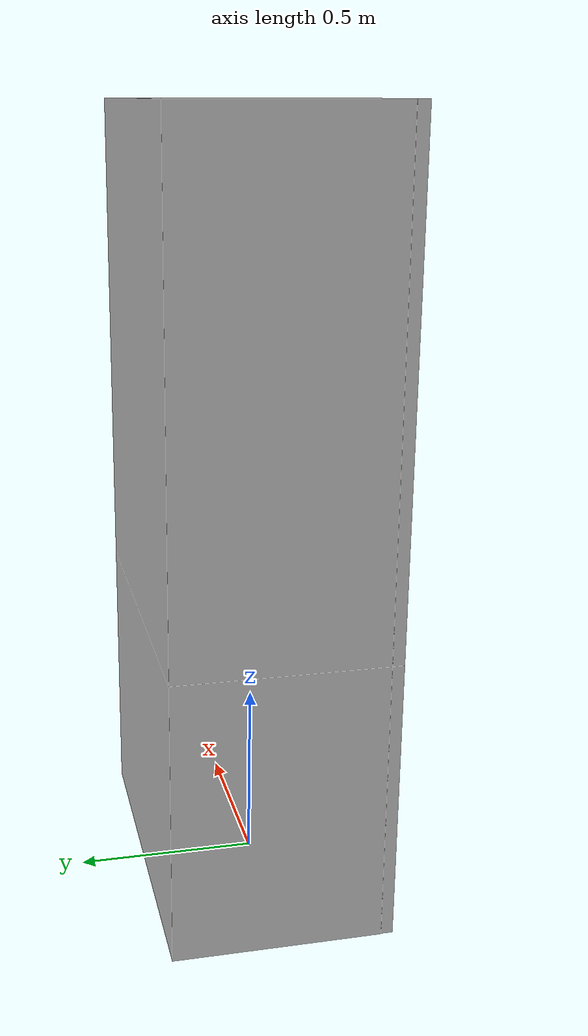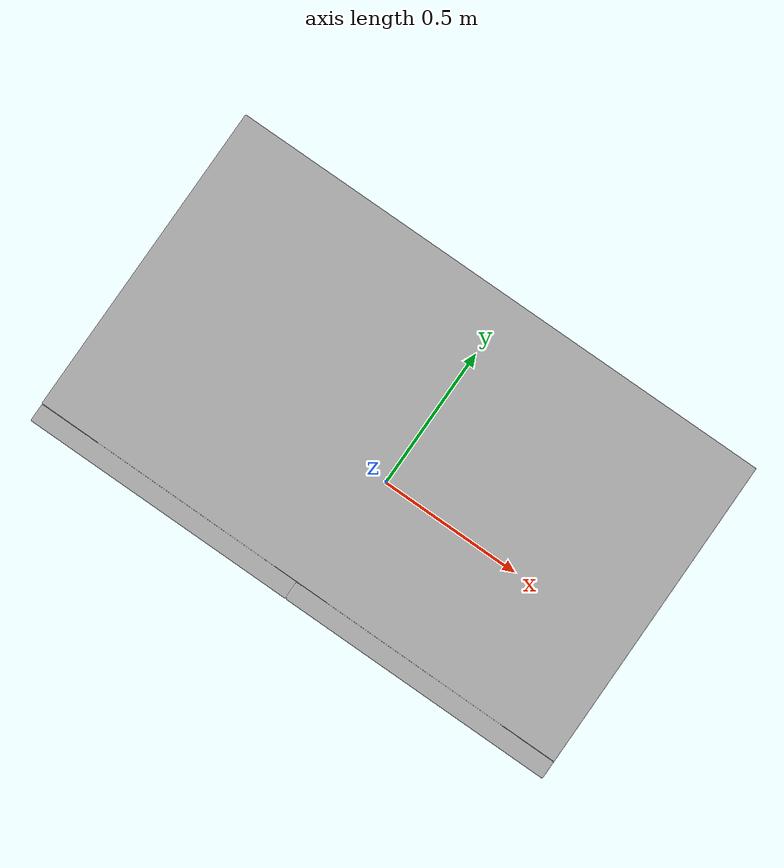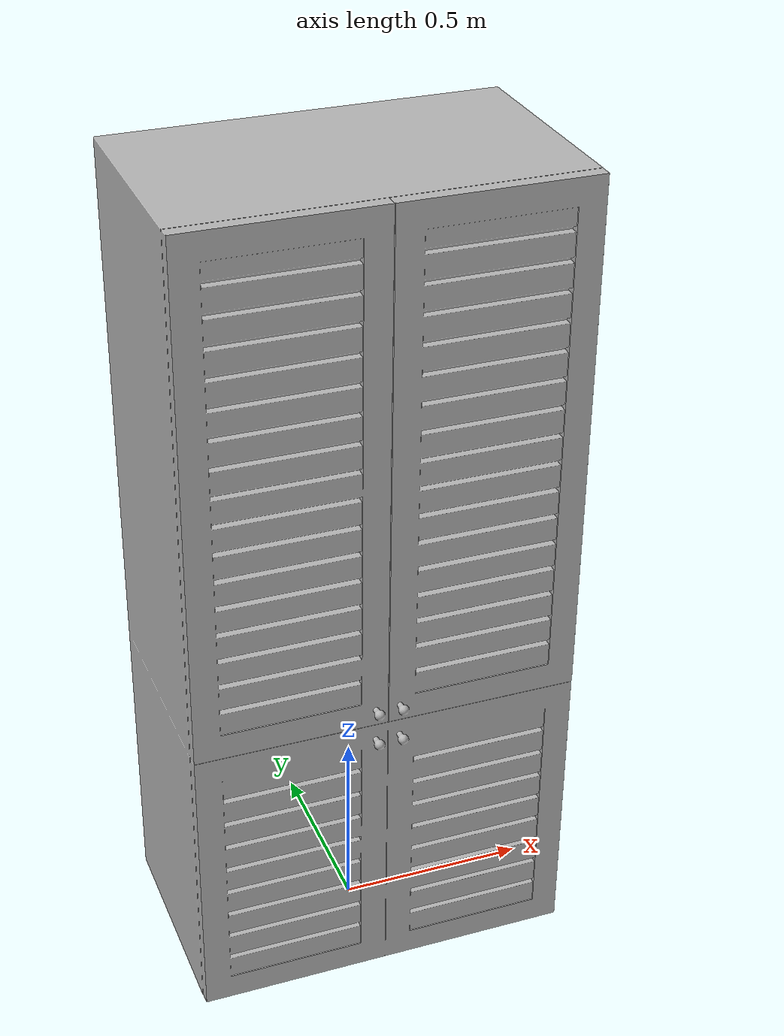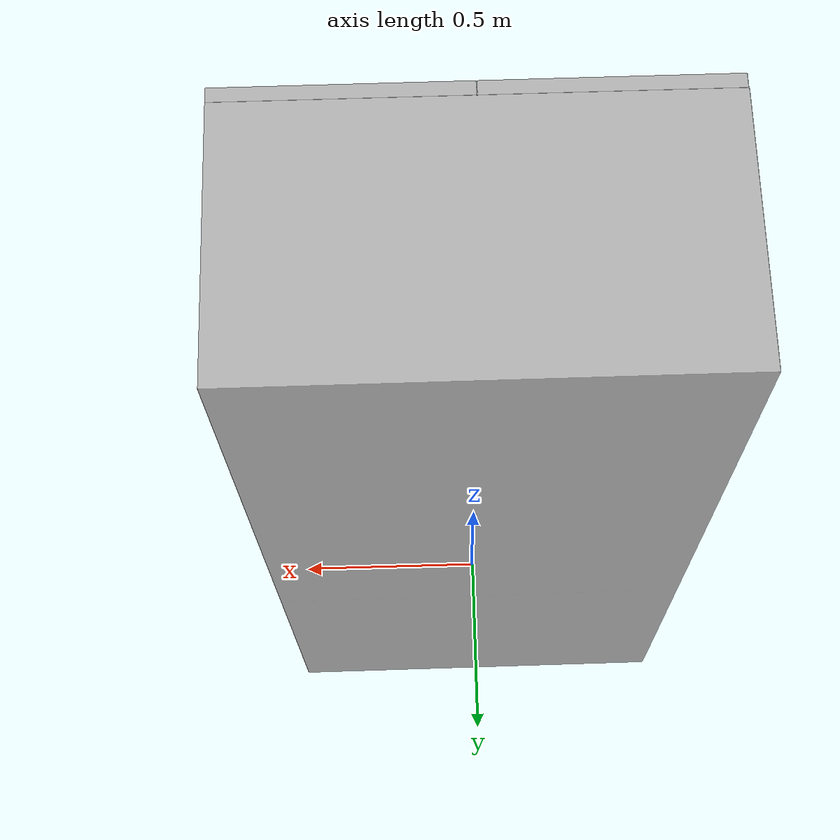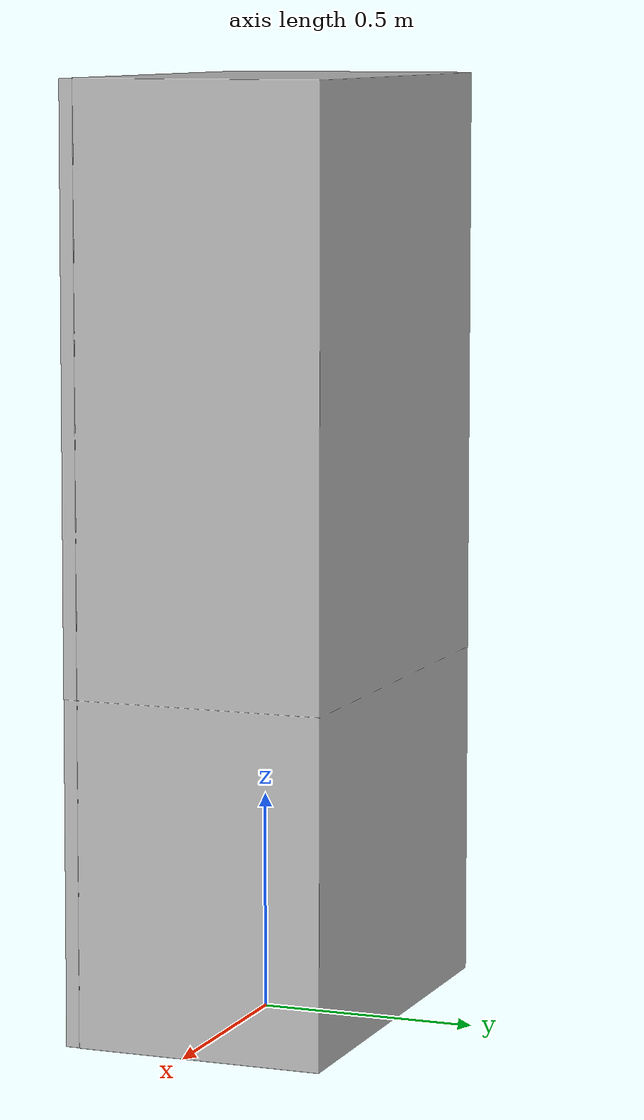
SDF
<?xml version="1.0"?>
<sdf version="1.6">
  <model name="aws_robomaker_residential_Wardrobe_01">
    <link name="link_Wardrobe_01">
      <inertial>
        <mass>51.7</mass>
        <inertia>
          <ixx>0.01</ixx>
          <iyy>0.01</iyy>
          <izz>0.01</izz>
          <ixy>0.0</ixy>
          <ixz>0.0</ixz>
          <iyz>0.0</iyz>
        </inertia>
      </inertial>
      <collision name="collision">
        <geometry>
          <mesh>
            <uri>model://aws_robomaker_residential_Wardrobe_01/meshes/aws_Wardrobe_01_collision.DAE</uri>
            <scale>1 1 1</scale>
          </mesh>
        </geometry>
      </collision>
      <visual name="visual">
        <geometry>
          <mesh>
            <uri>model://aws_robomaker_residential_Wardrobe_01/meshes/aws_Wardrobe_01_visual.DAE</uri>
          </mesh>
        </geometry>
        <meta>
          <layer> 1 </layer>
        </meta>
      </visual>
    </link>
    <static>1</static>
  </model>
</sdf>
